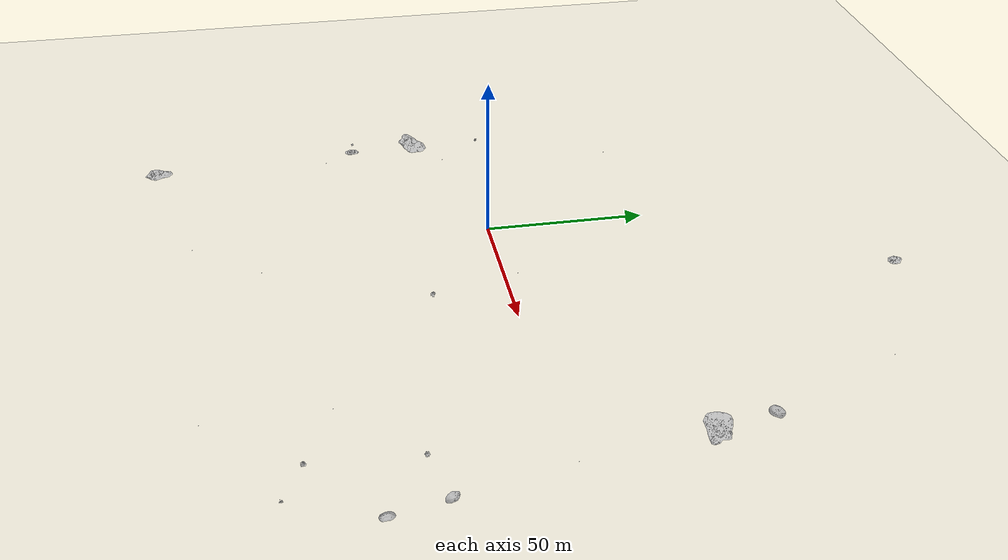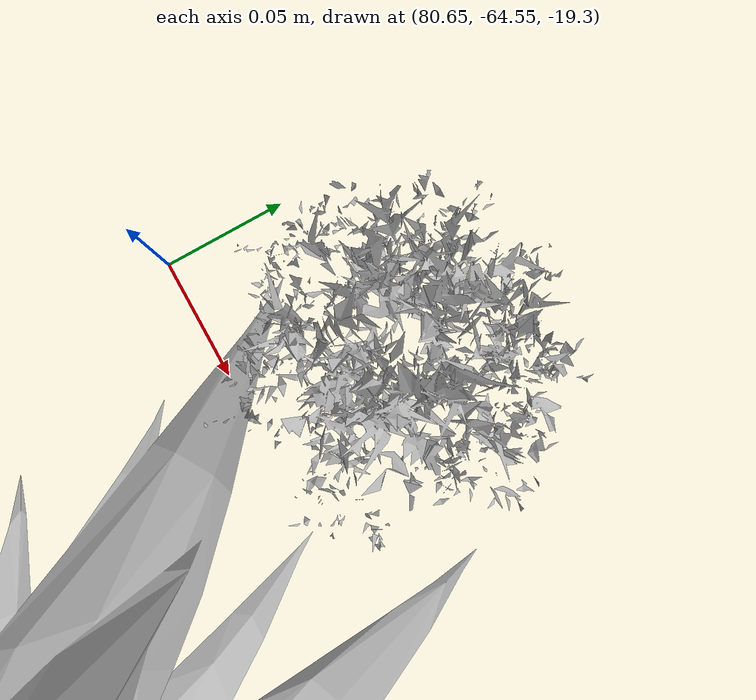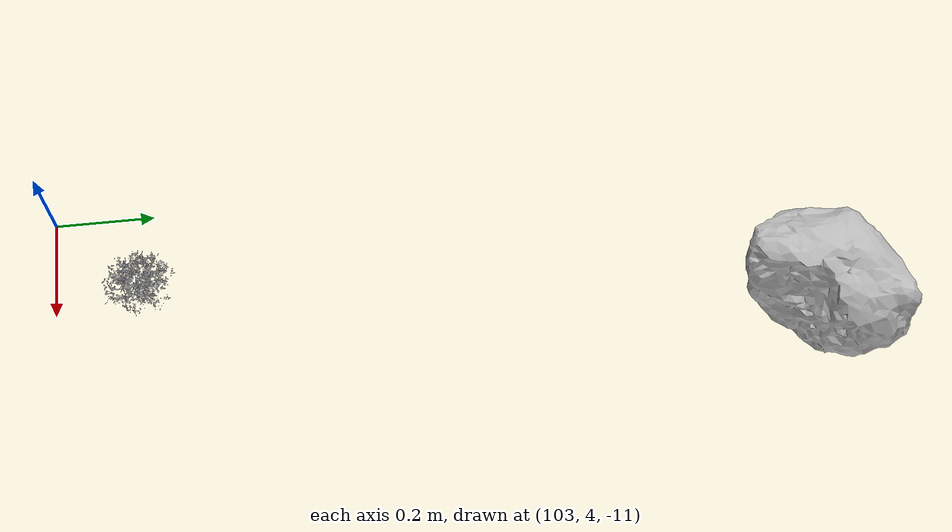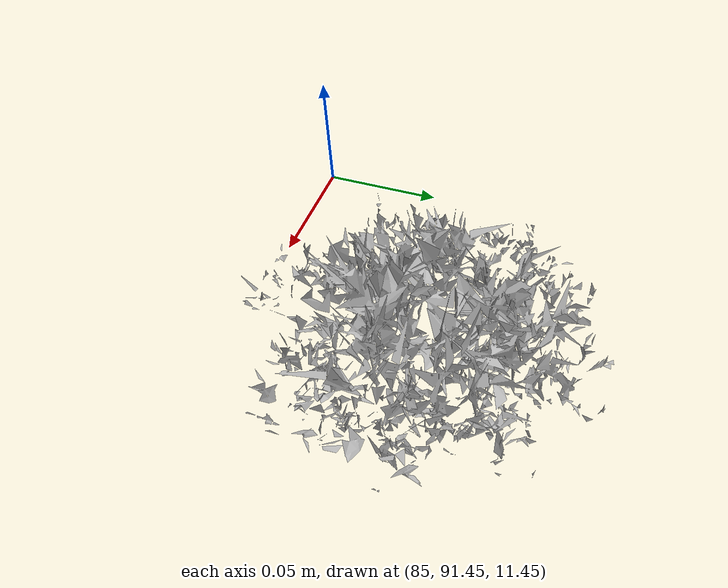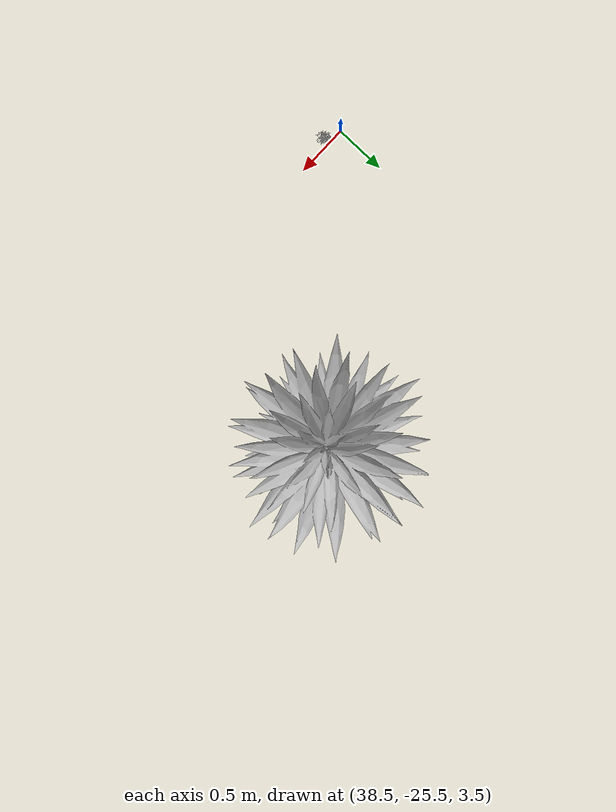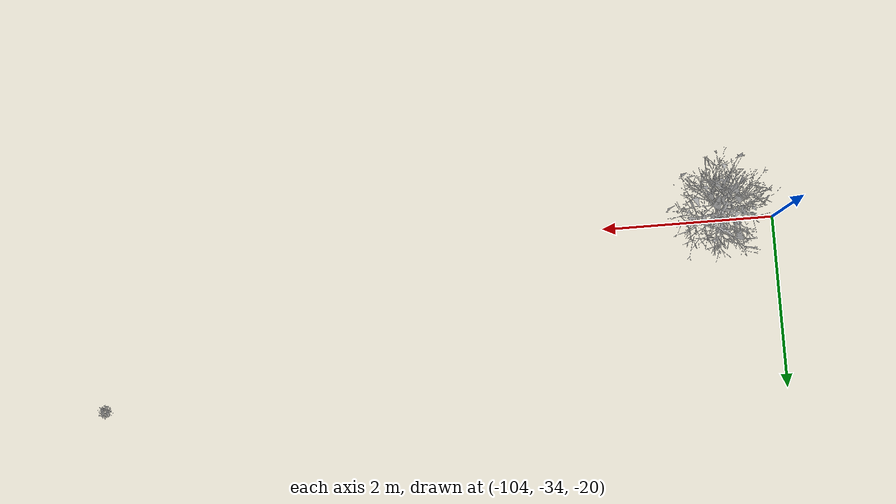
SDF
<sdf version="1.7">
 <world name="forest_world">
  <include><uri>model://sun</uri></include>
  <light name="ambient" type="directional">
   <pose>0 0 10 0 0 0</pose>
   <diffuse>0.7 0.7 0.7 1</diffuse>
   <specular>0.1 0.1 0.1 1</specular>
   <direction>0.1 0.1 -0.9</direction>
  </light>
  <light name="point_light_0" type="point">
   <cast_shadows>false</cast_shadows>
   <pose>10 10 5 0 0 0</pose>
   <diffuse>0.4 0.4 0.4 1</diffuse>
   <specular>0.1 0.1 0.1 1</specular>
   <range>20</range>
  </light>
  <light name="point_light_1" type="point">
   <cast_shadows>false</cast_shadows>
   <pose>-10 10 5 0 0 0</pose>
   <diffuse>0.4 0.4 0.4 1</diffuse>
   <specular>0.1 0.1 0.1 1</specular>
   <range>20</range>
  </light>
  <light name="point_light_2" type="point">
   <cast_shadows>false</cast_shadows>
   <pose>10 -10 5 0 0 0</pose>
   <diffuse>0.4 0.4 0.4 1</diffuse>
   <specular>0.1 0.1 0.1 1</specular>
   <range>20</range>
  </light>
  <light name="point_light_3" type="point">
   <cast_shadows>false</cast_shadows>
   <pose>-10 -10 5 0 0 0</pose>
   <diffuse>0.4 0.4 0.4 1</diffuse>
   <specular>0.1 0.1 0.1 1</specular>
   <range>20</range>
  </light>
  <include><uri>model://ground</uri><name>terrain</name></include>
  <physics type="ode">
   <real_time_update_rate>1000.0</real_time_update_rate>
   <max_step_size>0.001</max_step_size>
   <real_time_factor>1</real_time_factor>
   <gravity>0 0 -9.8</gravity>
  </physics>
  <include>
   <uri>model://sand/sand-rocks-small-01_2K_e14d6880-1c63-4176-a598-1c68a5f910bd</uri>
   <name>sand_0</name>
   <pose>-51.710964996990526 -38.19206008813798 4.568080929626706 0 0 4.511189694487601</pose>
   <scale>2.447658022776754 2.447658022776754 2.447658022776754</scale>
  </include>
  <include>
   <uri>model://sand/sand-rocks-small-01_2K_e14d6880-1c63-4176-a598-1c68a5f910bd</uri>
   <name>sand_1</name>
   <pose>67.41092104395045 104.13535309729876 18.35487233085677 0 0 5.178336066790762</pose>
   <scale>1.1625189178208108 1.1625189178208108 1.1625189178208108</scale>
  </include>
  <include>
   <uri>model://sand/sand-dune_2K_0a625146-f652-4724-ad1f-ff705a37da8f</uri>
   <name>sand_2</name>
   <pose>104.25137574448881 -45.55308946409122 -20.876879228001346 0 0 1.584818509657545</pose>
   <scale>1.3280061629464668 1.3280061629464668 1.3280061629464668</scale>
  </include>
  <include>
   <uri>model://sand/sand-dune_2K_0a625146-f652-4724-ad1f-ff705a37da8f</uri>
   <name>sand_3</name>
   <pose>102.86562990082379 58.96907890002933 -1.9810699237355658 0 0 4.082432732462487</pose>
   <scale>1.4706490274919748 1.4706490274919748 1.4706490274919748</scale>
  </include>
  <include>
   <uri>model://sand/sand-dune_2K_0a625146-f652-4724-ad1f-ff705a37da8f</uri>
   <name>sand_4</name>
   <pose>103.64569123760302 -27.85673897602139 -17.403570986758318 0 0 5.112499302862452</pose>
   <scale>1.0653067886248726 1.0653067886248726 1.0653067886248726</scale>
  </include>
  <include>
   <uri>model://rock/coast-land-rocks-04_2K_9d63d4e8-5064-4b62-8bfa-f7d45027fcf6</uri>
   <name>rock_0</name>
   <pose>-68.73766278106935 -104.75 -7.221014019681714 -0.13944995826198295 -0.13944995826198295 1.4936816201760057</pose>
   <scale>0.5675381389569549 0.5675381389569549 0.5675381389569549</scale>
  </include>
  <include>
   <uri>model://rock/coast-land-rocks-04_2K_9d63d4e8-5064-4b62-8bfa-f7d45027fcf6</uri>
   <name>rock_1</name>
   <pose>-76.69870490494164 -14.224913320565548 -7.27890233992519 0.11990957342702405 0.11990957342702405 1.3929661502745754</pose>
   <scale>1.5493873659112904 1.5493873659112904 1.5493873659112904</scale>
  </include>
  <include>
   <uri>model://rock/rock_2K_bf18f3e1-4f7c-457d-b70a-56315998a211</uri>
   <name>rock_2</name>
   <pose>19.38340181948115 -71.88266802608673 3.6359546759415733 0.1399702034411716 0.1399702034411716 2.7005917609661916</pose>
   <scale>1.8707975838574706 1.8707975838574706 1.8707975838574706</scale>
  </include>
  <include>
   <uri>model://rock/rock_2K_bf18f3e1-4f7c-457d-b70a-56315998a211</uri>
   <name>rock_3</name>
   <pose>103.5 5.373646906444705 -10.570714021122281 -0.04799538042551403 -0.04799538042551403 1.0368853226236634</pose>
   <scale>1.8571257688867753 1.8571257688867753 1.8571257688867753</scale>
  </include>
  <include>
   <uri>model://rock/coast-land-rocks-04_2K_9d63d4e8-5064-4b62-8bfa-f7d45027fcf6</uri>
   <name>rock_4</name>
   <pose>103.5 42.553456836675025 -4.473376484217401 -0.10980869893218351 -0.10980869893218351 3.7716461081174333</pose>
   <scale>1.8385379544174427 1.8385379544174427 1.8385379544174427</scale>
  </include>
  <include>
   <uri>model://bush/MT_PM_V60_Agave_sisalana_01_01</uri>
   <name>bush_0</name>
   <pose>81.07148100919997 -65.36915380827021 -20.238013235590344 0 0 4.179770754787352</pose>
   <scale>0.4844334192457174 0.4844334192457174 0.4844334192457174</scale>
  </include>
  <include>
   <uri>model://bush/MT_PM_V60_Agave_sisalana_01_01</uri>
   <name>bush_1</name>
   <pose>88.99387310732902 -32.59006265219128 -15.038228586568003 0 0 3.390282280826479</pose>
   <scale>0.7844273901614112 0.7844273901614112 0.7844273901614112</scale>
  </include>
  <include>
   <uri>model://bush/MT_PM_V60_Cistus_albidus_01_01</uri>
   <name>bush_3</name>
   <pose>-60.19357183636296 6.2952920597063695 0.701850637780448 0 0 3.02973256858452</pose>
   <scale>0.8327315822674464 0.8327315822674464 0.8327315822674464</scale>
  </include>
  <include>
   <uri>model://bush/MT_PM_V60_Agave_sisalana_01_01</uri>
   <name>bush_5</name>
   <pose>40.69562739727462 -23.6342433565909 3.732577771775219 0 0 5.870487983312172</pose>
   <scale>0.7077894490653907 0.7077894490653907 0.7077894490653907</scale>
  </include>
  <include>
   <uri>model://bush/MT_PM_V60_Cistus_albidus_01_01</uri>
   <name>bush_7</name>
   <pose>91.09059525293645 -72.14046564020325 -23.751449187402102 0 0 0.9306719301938755</pose>
   <scale>0.5155075666104973 0.5155075666104973 0.5155075666104973</scale>
  </include>
  <include>
   <uri>model://bush/MT_PM_V60_Cistus_albidus_01_01</uri>
   <name>bush_9</name>
   <pose>-103.26527476517701 -34.03074894954244 -19.469242700214405 0 0 0.4801558439169955</pose>
   <scale>0.5501571567545496 0.5501571567545496 0.5501571567545496</scale>
  </include>
  <include>
   <uri>model://grass/MT_PM_V60_Cynodon_dactylon_01_01</uri>
   <name>grass_0</name>
   <pose>39.026064929295416 1.7970215406599124 7.7596482648265726 0 0 1.4228769126934881</pose>
   <scale>0.590742313989421 0.590742313989421 0.590742313989421</scale>
  </include>
  <include>
   <uri>model://grass/MT_PM_V60_Cynodon_dactylon_01_01</uri>
   <name>grass_1</name>
   <pose>60.03382702721069 -93.03397859422911 -19.198551524189558 0 0 4.660494236881023</pose>
   <scale>0.5261998726109105 0.5261998726109105 0.5261998726109105</scale>
  </include>
  <include>
   <uri>model://grass/MT_PM_V60_Cynodon_dactylon_01_01</uri>
   <name>grass_2</name>
   <pose>1.7569714987431837 -92.30810757268858 3.074909646526266 0 0 1.7027255047972438</pose>
   <scale>0.3068872689763423 0.3068872689763423 0.3068872689763423</scale>
  </include>
  <include>
   <uri>model://grass/MT_PM_V60_Cynodon_dactylon_01_01</uri>
   <name>grass_3</name>
   <pose>3.4995194430356946 41.20023084906629 16.54425602995145 0 0 2.0806774913181383</pose>
   <scale>0.4278413851117175 0.4278413851117175 0.4278413851117175</scale>
  </include>
  <include>
   <uri>model://grass/MT_PM_V60_Cynodon_dactylon_01_01</uri>
   <name>grass_4</name>
   <pose>5.613879351080527 -4.485272307865543 8.496502325665002 0 0 3.118323688212643</pose>
   <scale>0.22258857212997404 0.22258857212997404 0.22258857212997404</scale>
  </include>
  <include>
   <uri>model://grass/MT_PM_V60_Cynodon_dactylon_01_01</uri>
   <name>grass_5</name>
   <pose>65.17146308264134 -40.27492133148421 -7.414022947335264 0 0 0.017769008852769802</pose>
   <scale>0.40954795088082613 0.40954795088082613 0.40954795088082613</scale>
  </include>
  <include>
   <uri>model://grass/MT_PM_V60_Cynodon_dactylon_01_01</uri>
   <name>grass_6</name>
   <pose>-78.34641228343679 -91.56927940577856 -7.544844629507979 0 0 1.0902976458061318</pose>
   <scale>0.41950516682655736 0.41950516682655736 0.41950516682655736</scale>
  </include>
  <include>
   <uri>model://grass/MT_PM_V60_Cynodon_dactylon_01_01</uri>
   <name>grass_7</name>
   <pose>-69.44993888847608 -34.540159620050176 -2.43262168859578 0 0 0.9845691821452367</pose>
   <scale>0.44074351269067713 0.44074351269067713 0.44074351269067713</scale>
  </include>
  <include>
   <uri>model://grass/MT_PM_V60_Cynodon_dactylon_01_01</uri>
   <name>grass_8</name>
   <pose>-49.64110190285065 56.92601228259983 -0.8020936481110728 0 0 1.9156686288423084</pose>
   <scale>0.39798565436750666 0.39798565436750666 0.39798565436750666</scale>
  </include>
  <include>
   <uri>model://grass/MT_PM_V60_Cynodon_dactylon_01_01</uri>
   <name>grass_9</name>
   <pose>44.42554349283037 -94.49365552969579 -11.386270634765085 0 0 2.8141121893076204</pose>
   <scale>0.5827814932311534 0.5827814932311534 0.5827814932311534</scale>
  </include>
  <include>
   <uri>model://grass/MT_PM_V60_Cynodon_dactylon_01_01</uri>
   <name>grass_10</name>
   <pose>73.77323311052697 -55.562923177442464 -15.584605147778932 0 0 5.0436284049768245</pose>
   <scale>0.34093318954329166 0.34093318954329166 0.34093318954329166</scale>
  </include>
  <include>
   <uri>model://grass/MT_PM_V60_Cynodon_dactylon_01_01</uri>
   <name>grass_11</name>
   <pose>-96.90470266093686 -32.22538387146301 -15.900355693812072 0 0 0.02610663718046573</pose>
   <scale>0.2596307961878848 0.2596307961878848 0.2596307961878848</scale>
  </include>
  <include>
   <uri>model://grass/MT_PM_V60_Cynodon_dactylon_01_01</uri>
   <name>grass_12</name>
   <pose>-25.41924375714484 2.4113251999432492 11.539510720717434 0 0 1.8861494392994882</pose>
   <scale>0.26167906195198987 0.26167906195198987 0.26167906195198987</scale>
  </include>
  <include>
   <uri>model://grass/MT_PM_V60_Cynodon_dactylon_01_01</uri>
   <name>grass_13</name>
   <pose>95.04950172603185 60.559035603258394 1.7582581934285462 0 0 5.059065125352453</pose>
   <scale>0.49638443312510705 0.49638443312510705 0.49638443312510705</scale>
  </include>
  <include>
   <uri>model://grass/MT_PM_V60_Cynodon_dactylon_01_01</uri>
   <name>grass_14</name>
   <pose>103.12675748540164 4.157131491159049 -11.035734368636703 0 0 1.2463548536867632</pose>
   <scale>0.38281920573642675 0.38281920573642675 0.38281920573642675</scale>
  </include>
  <include>
   <uri>model://grass/MT_PM_V60_Cynodon_dactylon_01_01</uri>
   <name>grass_15</name>
   <pose>-72.51632990830305 -9.21782131915117 -4.684942024803222 0 0 3.6277789069200086</pose>
   <scale>0.26405705579365313 0.26405705579365313 0.26405705579365313</scale>
  </include>
  <include>
   <uri>model://grass/MT_PM_V60_Cynodon_dactylon_01_01</uri>
   <name>grass_16</name>
   <pose>96.2474953324593 93.02817003237342 7.533046885610226 0 0 6.029517513141796</pose>
   <scale>0.3480563301998994 0.3480563301998994 0.3480563301998994</scale>
  </include>
  <include>
   <uri>model://grass/MT_PM_V60_Cynodon_dactylon_01_01</uri>
   <name>grass_17</name>
   <pose>-19.727270719641567 58.653088517481024 10.732417693593902 0 0 3.588400502954275</pose>
   <scale>0.4033197638962733 0.4033197638962733 0.4033197638962733</scale>
  </include>
  <include>
   <uri>model://grass/MT_PM_V60_Cynodon_dactylon_01_01</uri>
   <name>grass_18</name>
   <pose>-49.4099600827814 -27.135848381087285 6.825212344699242 0 0 2.184452617719722</pose>
   <scale>0.3504866356044084 0.3504866356044084 0.3504866356044084</scale>
  </include>
  <include>
   <uri>model://grass/MT_PM_V60_Cynodon_dactylon_01_01</uri>
   <name>grass_19</name>
   <pose>-103.47403271882871 70.48294002754167 -21.738530150623678 0 0 4.664523407539495</pose>
   <scale>0.33674257836985405 0.33674257836985405 0.33674257836985405</scale>
  </include>
  <include>
   <uri>model://grass/MT_PM_V60_Cynodon_dactylon_01_01</uri>
   <name>grass_20</name>
   <pose>85.07281628504421 91.51968697191373 11.440030325664848 0 0 5.065218617354456</pose>
   <scale>0.5892534028899425 0.5892534028899425 0.5892534028899425</scale>
  </include>
  <include>
   <uri>model://grass/MT_PM_V60_Cynodon_dactylon_01_01</uri>
   <name>grass_21</name>
   <pose>-45.05348709456164 32.957084447670894 1.7231312761545836 0 0 1.2793541485137612</pose>
   <scale>0.28767406815728147 0.28767406815728147 0.28767406815728147</scale>
  </include>
  <include>
   <uri>model://grass/MT_PM_V60_Cynodon_dactylon_01_01</uri>
   <name>grass_22</name>
   <pose>-38.94090454334582 -47.68018018986228 7.8336677269080885 0 0 5.572038892685475</pose>
   <scale>0.509654569318928 0.509654569318928 0.509654569318928</scale>
  </include>
  <include>
   <uri>model://grass/MT_PM_V60_Cynodon_dactylon_01_01</uri>
   <name>grass_23</name>
   <pose>56.151673115651334 -67.67778162708312 -10.149060541102578 0 0 0.8601140834113472</pose>
   <scale>0.20723238758596296 0.20723238758596296 0.20723238758596296</scale>
  </include>
  <include>
   <uri>model://grass/MT_PM_V60_Cynodon_dactylon_01_01</uri>
   <name>grass_24</name>
   <pose>76.46510467649279 -100.40385399298974 -27.261126332603112 0 0 3.427450060845951</pose>
   <scale>0.44434263578075994 0.44434263578075994 0.44434263578075994</scale>
  </include>
  <include>
   <uri>model://grass/MT_PM_V60_Cynodon_dactylon_01_01</uri>
   <name>grass_25</name>
   <pose>-60.36433767618228 79.71168406564641 -2.343640312678071 0 0 1.4507764681068744</pose>
   <scale>0.3300290417674046 0.3300290417674046 0.3300290417674046</scale>
  </include>
  <include>
   <uri>model://grass/MT_PM_V60_Cynodon_dactylon_01_01</uri>
   <name>grass_26</name>
   <pose>-78.6487190983808 7.9437286291024805 -8.19729449946685 0 0 2.091063394513521</pose>
   <scale>0.5256688197602046 0.5256688197602046 0.5256688197602046</scale>
  </include>
  <include>
   <uri>model://grass/MT_PM_V60_Cynodon_dactylon_01_01</uri>
   <name>grass_27</name>
   <pose>17.907463314068266 -7.860537194250597 9.708171447113786 0 0 0.2700146345061467</pose>
   <scale>0.3855119813172363 0.3855119813172363 0.3855119813172363</scale>
  </include>
  <include>
   <uri>model://grass/MT_PM_V60_Cynodon_dactylon_01_01</uri>
   <name>grass_28</name>
   <pose>67.12463849986801 -55.69536506435931 -12.858135094646105 0 0 0.7265304949981629</pose>
   <scale>0.2234572264325515 0.2234572264325515 0.2234572264325515</scale>
  </include>
  <include>
   <uri>model://grass/MT_PM_V60_Cynodon_dactylon_01_01</uri>
   <name>grass_29</name>
   <pose>38.449246170710836 -4.829321847546794 7.6576587609355355 0 0 0.553022780059315</pose>
   <scale>0.428757467570392 0.428757467570392 0.428757467570392</scale>
  </include>
  <include>
   <uri>model://grass/MT_PM_V60_Cynodon_dactylon_01_01</uri>
   <name>grass_30</name>
   <pose>80.72314739741961 -64.4870428756445 -19.3101354134464 0 0 5.905885307335826</pose>
   <scale>0.3513877275689954 0.3513877275689954 0.3513877275689954</scale>
  </include>
  <include>
   <uri>model://grass/MT_PM_V60_Cynodon_dactylon_01_01</uri>
   <name>grass_31</name>
   <pose>40.3670970226413 -13.007444894109582 5.621915412048638 0 0 2.675837194449763</pose>
   <scale>0.2696383203319247 0.2696383203319247 0.2696383203319247</scale>
  </include>
  <include>
   <uri>model://grass/MT_PM_V60_Cynodon_dactylon_01_01</uri>
   <name>grass_32</name>
   <pose>62.786644839854375 -5.146463390431734 1.8153679323294 0 0 0.43160466532528524</pose>
   <scale>0.4801315907139499 0.4801315907139499 0.4801315907139499</scale>
  </include>
  <include>
   <uri>model://grass/MT_PM_V60_Cynodon_dactylon_01_01</uri>
   <name>grass_33</name>
   <pose>-56.305930048433474 37.24803236697545 -1.2115188621102597 0 0 2.410385534109629</pose>
   <scale>0.5908297628059381 0.5908297628059381 0.5908297628059381</scale>
  </include>
  <include>
   <uri>model://grass/MT_PM_V60_Cynodon_dactylon_01_01</uri>
   <name>grass_34</name>
   <pose>-56.737069174201736 -98.84418523808195 -5.333887493810351 0 0 6.222052318012987</pose>
   <scale>0.2202352663133068 0.2202352663133068 0.2202352663133068</scale>
  </include>
  <include>
   <uri>model://grass/MT_PM_V60_Cynodon_dactylon_01_01</uri>
   <name>grass_35</name>
   <pose>69.10829311974976 -16.89808361499027 -3.1844531632586794 0 0 2.4523152461141917</pose>
   <scale>0.2818397298145871 0.2818397298145871 0.2818397298145871</scale>
  </include>
  <include>
   <uri>model://grass/MT_PM_V60_Cynodon_dactylon_01_01</uri>
   <name>grass_36</name>
   <pose>38.72109687137271 -25.503106149891906 3.954992958387986 0 0 1.0994337649717307</pose>
   <scale>0.3721342666230085 0.3721342666230085 0.3721342666230085</scale>
  </include>
  <include>
   <uri>model://grass/MT_PM_V60_Cynodon_dactylon_01_01</uri>
   <name>grass_37</name>
   <pose>-27.66954507544382 -10.328690186313054 11.665793369285357 0 0 1.1215442250669827</pose>
   <scale>0.5069452851097969 0.5069452851097969 0.5069452851097969</scale>
  </include>
  <include>
   <uri>model://grass/MT_PM_V60_Cynodon_dactylon_01_01</uri>
   <name>grass_38</name>
   <pose>35.78735172276154 18.286918397876278 10.915611277091639 0 0 0.6990394976894061</pose>
   <scale>0.2808175952732925 0.2808175952732925 0.2808175952732925</scale>
  </include>
  <include>
   <uri>model://grass/MT_PM_V60_Cynodon_dactylon_01_01</uri>
   <name>grass_39</name>
   <pose>82.01652785266535 -103.1912024383504 -28.863123090348598 0 0 0.30199972738020486</pose>
   <scale>0.3041181072700512 0.3041181072700512 0.3041181072700512</scale>
  </include>
  <include>
   <uri>model://grass/MT_PM_V60_Cynodon_dactylon_01_01</uri>
   <name>grass_40</name>
   <pose>23.34556240984554 84.6838227944566 18.138796422571662 0 0 5.555208249357863</pose>
   <scale>0.2596660985041541 0.2596660985041541 0.2596660985041541</scale>
  </include>
  <include>
   <uri>model://grass/MT_PM_V60_Cynodon_dactylon_01_01</uri>
   <name>grass_41</name>
   <pose>79.44193233607047 -74.15464992067854 -22.443768348759097 0 0 5.099453399566612</pose>
   <scale>0.5752304754203559 0.5752304754203559 0.5752304754203559</scale>
  </include>
  <include>
   <uri>model://grass/MT_PM_V60_Cynodon_dactylon_01_01</uri>
   <name>grass_42</name>
   <pose>15.777115541969692 -88.31953073988223 1.5823314489408844 0 0 3.694143595998056</pose>
   <scale>0.37520340956769294 0.37520340956769294 0.37520340956769294</scale>
  </include>
  <include>
   <uri>model://grass/MT_PM_V60_Cynodon_dactylon_01_01</uri>
   <name>grass_43</name>
   <pose>78.19843094011628 -5.808819911797713 -4.384440098682409 0 0 5.662351374916095</pose>
   <scale>0.20979526007934007 0.20979526007934007 0.20979526007934007</scale>
  </include>
  <include>
   <uri>model://grass/MT_PM_V60_Cynodon_dactylon_01_01</uri>
   <name>grass_44</name>
   <pose>-37.38429298683896 20.731102536135907 4.356963462437413 0 0 0.979724814170626</pose>
   <scale>0.57400730324322 0.57400730324322 0.57400730324322</scale>
  </include>
  <include>
   <uri>model://grass/MT_PM_V60_Cynodon_dactylon_01_01</uri>
   <name>grass_45</name>
   <pose>53.369912887613026 51.18388826211395 12.529271771315374 0 0 1.4092817079043538</pose>
   <scale>0.3234495475286131 0.3234495475286131 0.3234495475286131</scale>
  </include>
  <include>
   <uri>model://grass/MT_PM_V60_Cynodon_dactylon_01_01</uri>
   <name>grass_46</name>
   <pose>-42.62300775789079 29.507201282425683 3.1218426914784274 0 0 1.651637442033691</pose>
   <scale>0.26873547039508733 0.26873547039508733 0.26873547039508733</scale>
  </include>
  <include>
   <uri>model://grass/MT_PM_V60_Cynodon_dactylon_01_01</uri>
   <name>grass_47</name>
   <pose>-44.78848964301017 49.23890745667384 0.30404918044682544 0 0 0.22262780569718169</pose>
   <scale>0.40194098594635397 0.40194098594635397 0.40194098594635397</scale>
  </include>
  <include>
   <uri>model://grass/MT_PM_V60_Cynodon_dactylon_01_01</uri>
   <name>grass_48</name>
   <pose>29.819124325885838 81.66585984125189 17.408369583419734 0 0 0.03439284282859113</pose>
   <scale>0.4664677217991556 0.4664677217991556 0.4664677217991556</scale>
  </include>
  <include>
   <uri>model://grass/MT_PM_V60_Cynodon_dactylon_01_01</uri>
   <name>grass_49</name>
   <pose>87.9548289189886 -9.768018766756597 -8.20278922439187 0 0 0.659835513380078</pose>
   <scale>0.39774857278134546 0.39774857278134546 0.39774857278134546</scale>
  </include>
 </world>
</sdf>

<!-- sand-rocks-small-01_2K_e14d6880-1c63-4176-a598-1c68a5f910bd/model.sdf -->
<sdf version="1.6">
    <model name="sand-rocks-small-01_2K_e14d6880-1c63-4176-a598-1c68a5f910bd">
        <static>true</static>
        <link name="link">
            <collision name="collision">
                <geometry>
                    <mesh>
                        <uri>model://sand/sand-rocks-small-01_2K_e14d6880-1c63-4176-a598-1c68a5f910bd/mesh/sand-rocks-small-01_2K_e14d6880-1c63-4176-a598-1c68a5f910bd_collision.dae</uri>
                    </mesh>
                </geometry>
            </collision>
            <visual name="visual">
                <geometry>
                    <mesh>
                        <uri>model://sand/sand-rocks-small-01_2K_e14d6880-1c63-4176-a598-1c68a5f910bd/mesh/sand-rocks-small-01_2K_e14d6880-1c63-4176-a598-1c68a5f910bd.dae</uri>
                    </mesh>
                </geometry>
                <material>
                    <script>
                        <uri>model://sand/sand-rocks-small-01_2K_e14d6880-1c63-4176-a598-1c68a5f910bd/materials/sand-rocks-small-01_2K_e14d6880-1c63-4176-a598-1c68a5f910bd.material</uri>
                        <name>sand-rocks-small-01_2K_e14d6880-1c63-4176-a598-1c68a5f910bd</name>
                    </script>
                </material>
            </visual>
        </link>
    </model>
</sdf>

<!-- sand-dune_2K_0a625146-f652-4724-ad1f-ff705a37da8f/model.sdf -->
<sdf version="1.6">
    <model name="sand-dune_2K_0a625146-f652-4724-ad1f-ff705a37da8f">
        <static>true</static>
        <link name="link">
            <collision name="collision">
                <geometry>
                    <mesh>
                        <uri>model://sand/sand-dune_2K_0a625146-f652-4724-ad1f-ff705a37da8f/mesh/sand-dune_2K_0a625146-f652-4724-ad1f-ff705a37da8f_collision.dae</uri>
                    </mesh>
                </geometry>
            </collision>
            <visual name="visual">
                <geometry>
                    <mesh>
                        <uri>model://sand/sand-dune_2K_0a625146-f652-4724-ad1f-ff705a37da8f/mesh/sand-dune_2K_0a625146-f652-4724-ad1f-ff705a37da8f.dae</uri>
                    </mesh>
                </geometry>
                <material>
                    <script>
                        <uri>model://sand/sand-dune_2K_0a625146-f652-4724-ad1f-ff705a37da8f/materials/sand-dune_2K_0a625146-f652-4724-ad1f-ff705a37da8f.material</uri>
                        <name>sand-dune_2K_0a625146-f652-4724-ad1f-ff705a37da8f</name>
                    </script>
                </material>
            </visual>
        </link>
    </model>
</sdf>

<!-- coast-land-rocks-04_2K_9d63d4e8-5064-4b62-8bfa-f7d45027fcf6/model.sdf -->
<sdf version="1.6">
    <model name="coast-land-rocks-04_2K_9d63d4e8-5064-4b62-8bfa-f7d45027fcf6">
        <static>true</static>
        <link name="link">
            <collision name="collision">
                <geometry>
                    <mesh>
                        <uri>model://rock/coast-land-rocks-04_2K_9d63d4e8-5064-4b62-8bfa-f7d45027fcf6/mesh/coast-land-rocks-04_2K_9d63d4e8-5064-4b62-8bfa-f7d45027fcf6_collision.dae</uri>
                    </mesh>
                </geometry>
            </collision>
            <visual name="visual">
                <geometry>
                    <mesh>
                        <uri>model://rock/coast-land-rocks-04_2K_9d63d4e8-5064-4b62-8bfa-f7d45027fcf6/mesh/coast-land-rocks-04_2K_9d63d4e8-5064-4b62-8bfa-f7d45027fcf6.dae</uri>
                    </mesh>
                </geometry>
                <material>
                    <script>
                        <uri>model://rock/coast-land-rocks-04_2K_9d63d4e8-5064-4b62-8bfa-f7d45027fcf6/materials/coast-land-rocks-04_2K_9d63d4e8-5064-4b62-8bfa-f7d45027fcf6.material</uri>
                        <name>coast-land-rocks-04_2K_9d63d4e8-5064-4b62-8bfa-f7d45027fcf6</name>
                    </script>
                </material>
            </visual>
        </link>
    </model>
</sdf>

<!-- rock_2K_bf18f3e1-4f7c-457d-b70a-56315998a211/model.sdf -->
<sdf version="1.6">
    <model name="rock_2K_bf18f3e1-4f7c-457d-b70a-56315998a211">
        <static>true</static>
        <link name="link">
            <collision name="collision">
                <geometry>
                    <mesh>
                        <uri>model://rock/rock_2K_bf18f3e1-4f7c-457d-b70a-56315998a211/mesh/rock_2K_bf18f3e1-4f7c-457d-b70a-56315998a211_collision.dae</uri>
                    </mesh>
                </geometry>
            </collision>
            <visual name="visual">
                <geometry>
                    <mesh>
                        <uri>model://rock/rock_2K_bf18f3e1-4f7c-457d-b70a-56315998a211/mesh/rock_2K_bf18f3e1-4f7c-457d-b70a-56315998a211.dae</uri>
                    </mesh>
                </geometry>
                <material>
                    <script>
                        <uri>model://rock/rock_2K_bf18f3e1-4f7c-457d-b70a-56315998a211/materials/rock_2K_bf18f3e1-4f7c-457d-b70a-56315998a211.material</uri>
                        <name>rock_2K_bf18f3e1-4f7c-457d-b70a-56315998a211</name>
                    </script>
                </material>
            </visual>
        </link>
    </model>
</sdf>

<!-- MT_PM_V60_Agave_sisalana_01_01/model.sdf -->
<sdf version="1.6">
    <model name="MT_PM_V60_Agave_sisalana_01_01">
        <static>true</static>
        <link name="link">
            <collision name="collision">
                <geometry>
                    <mesh>
                        <uri>model://bush/MT_PM_V60_Agave_sisalana_01_01/mesh/MT_PM_V60_Agave_sisalana_01_01_collision.dae</uri>
                    </mesh>
                </geometry>
            </collision>
            <visual name="visual">
                <geometry>
                    <mesh>
                        <uri>model://bush/MT_PM_V60_Agave_sisalana_01_01/mesh/MT_PM_V60_Agave_sisalana_01_01.dae</uri>
                    </mesh>
                </geometry>
                <material>
                    <script>
                        <uri>model://bush/MT_PM_V60_Agave_sisalana_01_01/materials/MT_PM_V60_Agave_sisalana_01_01.material</uri>
                        <name>MT_PM_V60_Agave_sisalana_01_01</name>
                    </script>
                </material>
            </visual>
        </link>
    </model>
</sdf>

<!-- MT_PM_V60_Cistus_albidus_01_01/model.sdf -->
<sdf version="1.6">
    <model name="MT_PM_V60_Cistus_albidus_01_01">
        <static>true</static>
        <link name="link">
            <collision name="collision">
                <geometry>
                    <mesh>
                        <uri>model://bush/MT_PM_V60_Cistus_albidus_01_01/mesh/MT_PM_V60_Cistus_albidus_01_01_collision.dae</uri>
                    </mesh>
                </geometry>
            </collision>
            <visual name="visual">
                <geometry>
                    <mesh>
                        <uri>model://bush/MT_PM_V60_Cistus_albidus_01_01/mesh/MT_PM_V60_Cistus_albidus_01_01.dae</uri>
                    </mesh>
                </geometry>
                <material>
                    <script>
                        <uri>model://bush/MT_PM_V60_Cistus_albidus_01_01/materials/MT_PM_V60_Cistus_albidus_01_01.material</uri>
                        <name>MT_PM_V60_Cistus_albidus_01_01</name>
                    </script>
                </material>
            </visual>
        </link>
    </model>
</sdf>

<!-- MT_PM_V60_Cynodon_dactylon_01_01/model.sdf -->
<sdf version="1.6">
    <model name="MT_PM_V60_Cynodon_dactylon_01_01">
        <static>true</static>
        <link name="link">
            <collision name="collision">
                <geometry>
                    <mesh>
                        <uri>model://grass/MT_PM_V60_Cynodon_dactylon_01_01/mesh/MT_PM_V60_Cynodon_dactylon_01_01_collision.dae</uri>
                    </mesh>
                </geometry>
            </collision>
            <visual name="visual">
                <geometry>
                    <mesh>
                        <uri>model://grass/MT_PM_V60_Cynodon_dactylon_01_01/mesh/MT_PM_V60_Cynodon_dactylon_01_01.dae</uri>
                    </mesh>
                </geometry>
                <material>
                    <script>
                        <uri>model://grass/MT_PM_V60_Cynodon_dactylon_01_01/materials/MT_PM_V60_Cynodon_dactylon_01_01.material</uri>
                        <name>MT_PM_V60_Cynodon_dactylon_01_01</name>
                    </script>
                </material>
            </visual>
        </link>
    </model>
</sdf>
